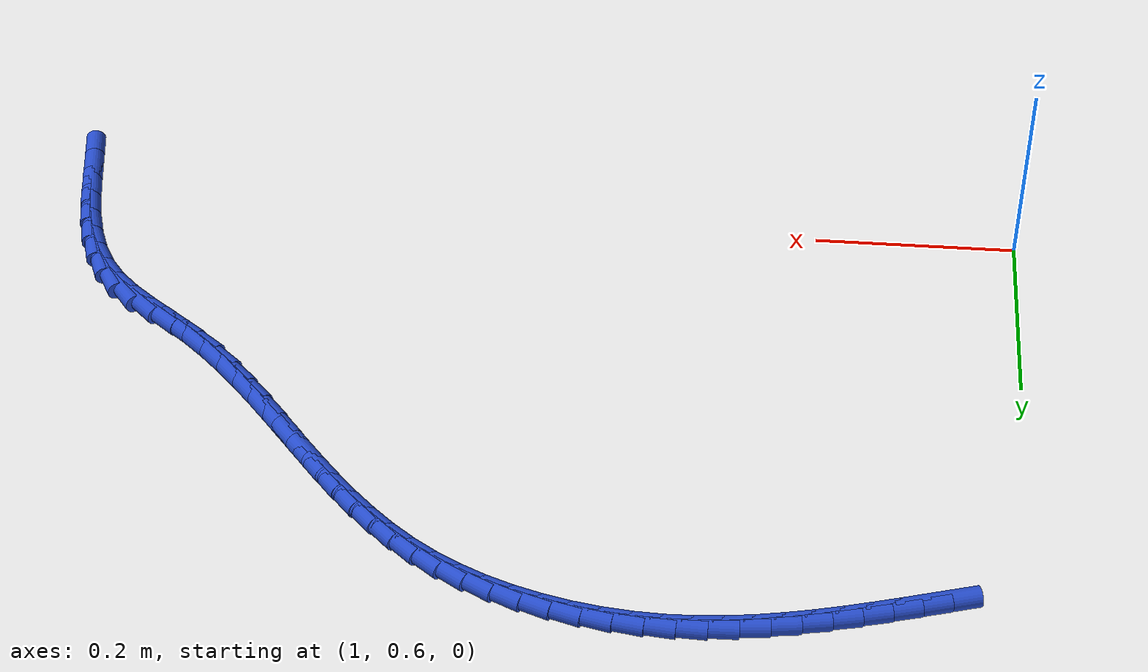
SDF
<sdf version="1.6">
 <world name="default">
  <model name="ground_plane">
   <static>1</static>
   <link name="link">
    <collision name="collision">
     <geometry><plane><normal>0 0 1</normal><size>100 100</size></plane></geometry>
     <surface><friction><ode><mu>100</mu><mu2>50</mu2></ode></friction></surface>
    </collision>
    <visual name="visual">
     <cast_shadows>0</cast_shadows>
     <geometry><plane><normal>0 0 1</normal><size>100 100</size></plane></geometry>
     <material>
      <script><uri>file://media/materials/scripts/gazebo.material</uri><name>Gazebo/WhiteGlow</name></script>
     </material>
    </visual>
   </link>
  </model>
  <model name="line">
   <link name="link_60">
    <pose>1.0867222086044612 1.086990925106635 0.01 0 1.57 0.28063739986274855</pose>
    <collision name="collision">
     <geometry><cylinder><radius>0.01</radius><length>0.08</length></cylinder></geometry>
    </collision>
    <visual name="visual">
     <material>
      <script><name>Gazebo/Blue</name><uri>file://media/materials/scripts/gazebo.material</uri></script>
     </material>
     <geometry><cylinder><radius>0.01</radius><length>0.08</length></cylinder></geometry>
    </visual>
   </link>
   <link name="link_61">
    <pose>1.1133660706073067 1.0946708733118404 0.01 0 1.57 0.2724246127013261</pose>
    <collision name="collision">
     <geometry><cylinder><radius>0.01</radius><length>0.08</length></cylinder></geometry>
    </collision>
    <visual name="visual">
     <material>
      <script><name>Gazebo/Blue</name><uri>file://media/materials/scripts/gazebo.material</uri></script>
     </material>
     <geometry><cylinder><radius>0.01</radius><length>0.08</length></cylinder></geometry>
    </visual>
   </link>
   <link name="link_62">
    <pose>1.1400894353934774 1.1021365856074015 0.01 0 1.57 0.2572107848409974</pose>
    <collision name="collision">
     <geometry><cylinder><radius>0.01</radius><length>0.08</length></cylinder></geometry>
    </collision>
    <visual name="visual">
     <material>
      <script><name>Gazebo/Blue</name><uri>file://media/materials/scripts/gazebo.material</uri></script>
     </material>
     <geometry><cylinder><radius>0.01</radius><length>0.08</length></cylinder></geometry>
    </visual>
   </link>
   <link name="link_63">
    <pose>1.1669095114374335 1.1091912619070383 0.01 0 1.57 0.2349369043771384</pose>
    <collision name="collision">
     <geometry><cylinder><radius>0.01</radius><length>0.08</length></cylinder></geometry>
    </collision>
    <visual name="visual">
     <material>
      <script><name>Gazebo/Blue</name><uri>file://media/materials/scripts/gazebo.material</uri></script>
     </material>
     <geometry><cylinder><radius>0.01</radius><length>0.08</length></cylinder></geometry>
    </visual>
   </link>
   <link name="link_64">
    <pose>1.193843507213636 1.1156381021244721 0.01 0 1.57 0.2055241596358322</pose>
    <collision name="collision">
     <geometry><cylinder><radius>0.01</radius><length>0.08</length></cylinder></geometry>
    </collision>
    <visual name="visual">
     <material>
      <script><name>Gazebo/Blue</name><uri>file://media/materials/scripts/gazebo.material</uri></script>
     </material>
     <geometry><cylinder><radius>0.01</radius><length>0.08</length></cylinder></geometry>
    </visual>
   </link>
   <link name="link_65">
    <pose>1.220908631196543 1.1212803061734218 0.01 0 1.57 0.16890723727493465</pose>
    <collision name="collision">
     <geometry><cylinder><radius>0.01</radius><length>0.08</length></cylinder></geometry>
    </collision>
    <visual name="visual">
     <material>
      <script><name>Gazebo/Blue</name><uri>file://media/materials/scripts/gazebo.material</uri></script>
     </material>
     <geometry><cylinder><radius>0.01</radius><length>0.08</length></cylinder></geometry>
    </visual>
   </link>
   <link name="link_66">
    <pose>1.2481220918606164 1.1259210739676084 0.01 0 1.57 0.12507977747997986</pose>
    <collision name="collision">
     <geometry><cylinder><radius>0.01</radius><length>0.08</length></cylinder></geometry>
    </collision>
    <visual name="visual">
     <material>
      <script><name>Gazebo/Blue</name><uri>file://media/materials/scripts/gazebo.material</uri></script>
     </material>
     <geometry><cylinder><radius>0.01</radius><length>0.08</length></cylinder></geometry>
    </visual>
   </link>
   <link name="link_67">
    <pose>1.2755010976803156 1.1293636054207523 0.01 0 1.57 0.07415132518568276</pose>
    <collision name="collision">
     <geometry><cylinder><radius>0.01</radius><length>0.08</length></cylinder></geometry>
    </collision>
    <visual name="visual">
     <material>
      <script><name>Gazebo/Blue</name><uri>file://media/materials/scripts/gazebo.material</uri></script>
     </material>
     <geometry><cylinder><radius>0.01</radius><length>0.08</length></cylinder></geometry>
    </visual>
   </link>
   <link name="link_68">
    <pose>1.303062857130101 1.1314111004465732 0.01 0 1.57 0.0164117200325248</pose>
    <collision name="collision">
     <geometry><cylinder><radius>0.01</radius><length>0.08</length></cylinder></geometry>
    </collision>
    <visual name="visual">
     <material>
      <script><name>Gazebo/Blue</name><uri>file://media/materials/scripts/gazebo.material</uri></script>
     </material>
     <geometry><cylinder><radius>0.01</radius><length>0.08</length></cylinder></geometry>
    </visual>
   </link>
   <link name="link_69">
    <pose>1.3308245786844324 1.1318667589587914 0.01 0 1.57 -0.04645657368198206</pose>
    <collision name="collision">
     <geometry><cylinder><radius>0.01</radius><length>0.08</length></cylinder></geometry>
    </collision>
    <visual name="visual">
     <material>
      <script><name>Gazebo/Blue</name><uri>file://media/materials/scripts/gazebo.material</uri></script>
     </material>
     <geometry><cylinder><radius>0.01</radius><length>0.08</length></cylinder></geometry>
    </visual>
   </link>
   <link name="link_70">
    <pose>1.3587692045144981 1.1305676126438093 0.01 0 1.57 -0.10956556486181751</pose>
    <collision name="collision">
     <geometry><cylinder><radius>0.01</radius><length>0.08</length></cylinder></geometry>
    </collision>
    <visual name="visual">
     <material>
      <script><name>Gazebo/Blue</name><uri>file://media/materials/scripts/gazebo.material</uri></script>
     </material>
     <geometry><cylinder><radius>0.01</radius><length>0.08</length></cylinder></geometry>
    </visual>
   </link>
   <link name="link_71">
    <pose>1.3867376570880983 1.1274909119412262 0.01 0 1.57 -0.1724186300896279</pose>
    <collision name="collision">
     <geometry><cylinder><radius>0.01</radius><length>0.08</length></cylinder></geometry>
    </collision>
    <visual name="visual">
     <material>
      <script><name>Gazebo/Blue</name><uri>file://media/materials/scripts/gazebo.material</uri></script>
     </material>
     <geometry><cylinder><radius>0.01</radius><length>0.08</length></cylinder></geometry>
    </visual>
   </link>
   <link name="link_72">
    <pose>1.4145340708786305 1.1226502287769171 0.01 0 1.57 -0.2358294093577178</pose>
    <collision name="collision">
     <geometry><cylinder><radius>0.01</radius><length>0.08</length></cylinder></geometry>
    </collision>
    <visual name="visual">
     <material>
      <script><name>Gazebo/Blue</name><uri>file://media/materials/scripts/gazebo.material</uri></script>
     </material>
     <geometry><cylinder><radius>0.01</radius><length>0.08</length></cylinder></geometry>
    </visual>
   </link>
   <link name="link_73">
    <pose>1.44196258030062 1.116059135134884 0.01 0 1.57 -0.30060101414818047</pose>
    <collision name="collision">
     <geometry><cylinder><radius>0.01</radius><length>0.08</length></cylinder></geometry>
    </collision>
    <visual name="visual">
     <material>
      <script><name>Gazebo/Blue</name><uri>file://media/materials/scripts/gazebo.material</uri></script>
     </material>
     <geometry><cylinder><radius>0.01</radius><length>0.08</length></cylinder></geometry>
    </visual>
   </link>
   <link name="link_74">
    <pose>1.4688273197685913 1.107731202999129 0.01 0 1.57 -0.36753331716097837</pose>
    <collision name="collision">
     <geometry><cylinder><radius>0.01</radius><length>0.08</length></cylinder></geometry>
    </collision>
    <visual name="visual">
     <material>
      <script><name>Gazebo/Blue</name><uri>file://media/materials/scripts/gazebo.material</uri></script>
     </material>
     <geometry><cylinder><radius>0.01</radius><length>0.08</length></cylinder></geometry>
    </visual>
   </link>
   <link name="link_75">
    <pose>1.494932423697069 1.097680004353655 0.01 0 1.57 -0.4374239429616152</pose>
    <collision name="collision">
     <geometry><cylinder><radius>0.01</radius><length>0.08</length></cylinder></geometry>
    </collision>
    <visual name="visual">
     <material>
      <script><name>Gazebo/Blue</name><uri>file://media/materials/scripts/gazebo.material</uri></script>
     </material>
     <geometry><cylinder><radius>0.01</radius><length>0.08</length></cylinder></geometry>
    </visual>
   </link>
   <link name="link_76">
    <pose>1.5200820265005779 1.0859191111824638 0.01 0 1.57 -0.5110592423421279</pose>
    <collision name="collision">
     <geometry><cylinder><radius>0.01</radius><length>0.08</length></cylinder></geometry>
    </collision>
    <visual name="visual">
     <material>
      <script><name>Gazebo/Blue</name><uri>file://media/materials/scripts/gazebo.material</uri></script>
     </material>
     <geometry><cylinder><radius>0.01</radius><length>0.08</length></cylinder></geometry>
    </visual>
   </link>
   <link name="link_77">
    <pose>1.5440802625936425 1.072462095469558 0.01 0 1.57 -0.5889745599587863</pose>
    <collision name="collision">
     <geometry><cylinder><radius>0.01</radius><length>0.08</length></cylinder></geometry>
    </collision>
    <visual name="visual">
     <material>
      <script><name>Gazebo/Blue</name><uri>file://media/materials/scripts/gazebo.material</uri></script>
     </material>
     <geometry><cylinder><radius>0.01</radius><length>0.08</length></cylinder></geometry>
    </visual>
   </link>
   <link name="link_78">
    <pose>1.5667373056100533 1.0573255704286706 0.01 0 1.57 -0.6650921187527021</pose>
    <collision name="collision">
     <geometry><cylinder><radius>0.01</radius><length>0.08</length></cylinder></geometry>
    </collision>
    <visual name="visual">
     <material>
      <script><name>Gazebo/Blue</name><uri>file://media/materials/scripts/gazebo.material</uri></script>
     </material>
     <geometry><cylinder><radius>0.01</radius><length>0.08</length></cylinder></geometry>
    </visual>
   </link>
   <link name="link_79">
    <pose>1.588042190640698 1.040616220317003 0.01 0 1.57 -0.7311967412535899</pose>
    <collision name="collision">
     <geometry><cylinder><radius>0.01</radius><length>0.08</length></cylinder></geometry>
    </collision>
    <visual name="visual">
     <material>
      <script><name>Gazebo/Blue</name><uri>file://media/materials/scripts/gazebo.material</uri></script>
     </material>
     <geometry><cylinder><radius>0.01</radius><length>0.08</length></cylinder></geometry>
    </visual>
   </link>
   <link name="link_80">
    <pose>1.608188310138151 1.0225436396615613 0.01 0 1.57 -0.7861447970342501</pose>
    <collision name="collision">
     <geometry><cylinder><radius>0.01</radius><length>0.08</length></cylinder></geometry>
    </collision>
    <visual name="visual">
     <material>
      <script><name>Gazebo/Blue</name><uri>file://media/materials/scripts/gazebo.material</uri></script>
     </material>
     <geometry><cylinder><radius>0.01</radius><length>0.08</length></cylinder></geometry>
    </visual>
   </link>
   <link name="link_81">
    <pose>1.6273802233576677 1.003323046367278 0.01 0 1.57 -0.8297037227932336</pose>
    <collision name="collision">
     <geometry><cylinder><radius>0.01</radius><length>0.08</length></cylinder></geometry>
    </collision>
    <visual name="visual">
     <material>
      <script><name>Gazebo/Blue</name><uri>file://media/materials/scripts/gazebo.material</uri></script>
     </material>
     <geometry><cylinder><radius>0.01</radius><length>0.08</length></cylinder></geometry>
    </visual>
   </link>
   <link name="link_82">
    <pose>1.645822489554503 0.9831696583390842 0.01 0 1.57 -0.8619552057652536</pose>
    <collision name="collision">
     <geometry><cylinder><radius>0.01</radius><length>0.08</length></cylinder></geometry>
    </collision>
    <visual name="visual">
     <material>
      <script><name>Gazebo/Blue</name><uri>file://media/materials/scripts/gazebo.material</uri></script>
     </material>
     <geometry><cylinder><radius>0.01</radius><length>0.08</length></cylinder></geometry>
    </visual>
   </link>
   <link name="link_83">
    <pose>1.6637196679839104 0.9622986934819124 0.01 0 1.57 -0.8831253194804538</pose>
    <collision name="collision">
     <geometry><cylinder><radius>0.01</radius><length>0.08</length></cylinder></geometry>
    </collision>
    <visual name="visual">
     <material>
      <script><name>Gazebo/Blue</name><uri>file://media/materials/scripts/gazebo.material</uri></script>
     </material>
     <geometry><cylinder><radius>0.01</radius><length>0.08</length></cylinder></geometry>
    </visual>
   </link>
   <link name="link_84">
    <pose>1.681276317901146 0.9409253697006945 0.01 0 1.57 -0.8934622281549885</pose>
    <collision name="collision">
     <geometry><cylinder><radius>0.01</radius><length>0.08</length></cylinder></geometry>
    </collision>
    <visual name="visual">
     <material>
      <script><name>Gazebo/Blue</name><uri>file://media/materials/scripts/gazebo.material</uri></script>
     </material>
     <geometry><cylinder><radius>0.01</radius><length>0.08</length></cylinder></geometry>
    </visual>
   </link>
   <link name="link_85">
    <pose>1.6986969985614642 0.9192649049003626 0.01 0 1.57 -0.8931620746274284</pose>
    <collision name="collision">
     <geometry><cylinder><radius>0.01</radius><length>0.08</length></cylinder></geometry>
    </collision>
    <visual name="visual">
     <material>
      <script><name>Gazebo/Blue</name><uri>file://media/materials/scripts/gazebo.material</uri></script>
     </material>
     <geometry><cylinder><radius>0.01</radius><length>0.08</length></cylinder></geometry>
    </visual>
   </link>
   <link name="link_86">
    <pose>1.7161862692201189 0.8975325169858482 0.01 0 1.57 -0.882336727546556</pose>
    <collision name="collision">
     <geometry><cylinder><radius>0.01</radius><length>0.08</length></cylinder></geometry>
    </collision>
    <visual name="visual">
     <material>
      <script><name>Gazebo/Blue</name><uri>file://media/materials/scripts/gazebo.material</uri></script>
     </material>
     <geometry><cylinder><radius>0.01</radius><length>0.08</length></cylinder></geometry>
    </visual>
   </link>
   <link name="link_87">
    <pose>1.733948689132366 0.8759434238620837 0.01 0 1.57 -0.8610175234651999</pose>
    <collision name="collision">
     <geometry><cylinder><radius>0.01</radius><length>0.08</length></cylinder></geometry>
    </collision>
    <visual name="visual">
     <material>
      <script><name>Gazebo/Blue</name><uri>file://media/materials/scripts/gazebo.material</uri></script>
     </material>
     <geometry><cylinder><radius>0.01</radius><length>0.08</length></cylinder></geometry>
    </visual>
   </link>
   <link name="link_88">
    <pose>1.7521888175534595 0.8547128434340011 0.01 0 1.57 -0.8291924449028764</pose>
    <collision name="collision">
     <geometry><cylinder><radius>0.01</radius><length>0.08</length></cylinder></geometry>
    </collision>
    <visual name="visual">
     <material>
      <script><name>Gazebo/Blue</name><uri>file://media/materials/scripts/gazebo.material</uri></script>
     </material>
     <geometry><cylinder><radius>0.01</radius><length>0.08</length></cylinder></geometry>
    </visual>
   </link>
   <link name="link_89">
    <pose>1.771111213738655 0.8340559936065318 0.01 0 1.57 -0.7868770526893114</pose>
    <collision name="collision">
     <geometry><cylinder><radius>0.01</radius><length>0.08</length></cylinder></geometry>
    </collision>
    <visual name="visual">
     <material>
      <script><name>Gazebo/Blue</name><uri>file://media/materials/scripts/gazebo.material</uri></script>
     </material>
     <geometry><cylinder><radius>0.01</radius><length>0.08</length></cylinder></geometry>
    </visual>
   </link>
   <link name="link_90">
    <pose>1.7909204369432064 0.8141880922846079 0.01 0 1.57 -0.7342192515860428</pose>
    <collision name="collision">
     <geometry><cylinder><radius>0.01</radius><length>0.08</length></cylinder></geometry>
    </collision>
    <visual name="visual">
     <material>
      <script><name>Gazebo/Blue</name><uri>file://media/materials/scripts/gazebo.material</uri></script>
     </material>
     <geometry><cylinder><radius>0.01</radius><length>0.08</length></cylinder></geometry>
    </visual>
   </link>
   <link name="link_91">
    <pose>1.8118210464223687 0.7953243573731617 0.01 0 1.57 -0.6752927218329403</pose>
    <collision name="collision">
     <geometry><cylinder><radius>0.01</radius><length>0.08</length></cylinder></geometry>
    </collision>
    <visual name="visual">
     <material>
      <script><name>Gazebo/Blue</name><uri>file://media/materials/scripts/gazebo.material</uri></script>
     </material>
     <geometry><cylinder><radius>0.01</radius><length>0.08</length></cylinder></geometry>
    </visual>
   </link>
   <link name="link_92">
    <pose>1.8339296283302076 0.77761747654354 0.01 0 1.57 -0.6495794162950996</pose>
    <collision name="collision">
     <geometry><cylinder><radius>0.01</radius><length>0.08</length></cylinder></geometry>
    </collision>
    <visual name="visual">
     <material>
      <script><name>Gazebo/Blue</name><uri>file://media/materials/scripts/gazebo.material</uri></script>
     </material>
     <geometry><cylinder><radius>0.01</radius><length>0.08</length></cylinder></geometry>
    </visual>
   </link>
   <link name="link_93">
    <pose>1.8564098589200875 0.7605428204477894 0.01 0 1.57 -0.6814106579400032</pose>
    <collision name="collision">
     <geometry><cylinder><radius>0.01</radius><length>0.08</length></cylinder></geometry>
    </collision>
    <visual name="visual">
     <material>
      <script><name>Gazebo/Blue</name><uri>file://media/materials/scripts/gazebo.material</uri></script>
     </material>
     <geometry><cylinder><radius>0.01</radius><length>0.08</length></cylinder></geometry>
    </visual>
   </link>
   <link name="link_94">
    <pose>1.8778422226858573 0.7431612339743516 0.01 0 1.57 -0.7768070853827901</pose>
    <collision name="collision">
     <geometry><cylinder><radius>0.01</radius><length>0.08</length></cylinder></geometry>
    </collision>
    <visual name="visual">
     <material>
      <script><name>Gazebo/Blue</name><uri>file://media/materials/scripts/gazebo.material</uri></script>
     </material>
     <geometry><cylinder><radius>0.01</radius><length>0.08</length></cylinder></geometry>
    </visual>
   </link>
   <link name="link_95">
    <pose>1.8967988097641835 0.7245275954024603 0.01 0 1.57 -0.9318301462613579</pose>
    <collision name="collision">
     <geometry><cylinder><radius>0.01</radius><length>0.08</length></cylinder></geometry>
    </collision>
    <visual name="visual">
     <material>
      <script><name>Gazebo/Blue</name><uri>file://media/materials/scripts/gazebo.material</uri></script>
     </material>
     <geometry><cylinder><radius>0.01</radius><length>0.08</length></cylinder></geometry>
    </visual>
   </link>
   <link name="link_96">
    <pose>1.9121434048097552 0.7038736618951875 0.01 0 1.57 -1.085660193214864</pose>
    <collision name="collision">
     <geometry><cylinder><radius>0.01</radius><length>0.08</length></cylinder></geometry>
    </collision>
    <visual name="visual">
     <material>
      <script><name>Gazebo/Blue</name><uri>file://media/materials/scripts/gazebo.material</uri></script>
     </material>
     <geometry><cylinder><radius>0.01</radius><length>0.08</length></cylinder></geometry>
    </visual>
   </link>
   <link name="link_97">
    <pose>1.9240745809859106 0.6812405849887565 0.01 0 1.57 -1.213087757171136</pose>
    <collision name="collision">
     <geometry><cylinder><radius>0.01</radius><length>0.08</length></cylinder></geometry>
    </collision>
    <visual name="visual">
     <material>
      <script><name>Gazebo/Blue</name><uri>file://media/materials/scripts/gazebo.material</uri></script>
     </material>
     <geometry><cylinder><radius>0.01</radius><length>0.08</length></cylinder></geometry>
    </visual>
   </link>
   <link name="link_98">
    <pose>1.9331724886250485 0.6569008985032202 0.01 0 1.57 -1.3112149450418653</pose>
    <collision name="collision">
     <geometry><cylinder><radius>0.01</radius><length>0.08</length></cylinder></geometry>
    </collision>
    <visual name="visual">
     <material>
      <script><name>Gazebo/Blue</name><uri>file://media/materials/scripts/gazebo.material</uri></script>
     </material>
     <geometry><cylinder><radius>0.01</radius><length>0.08</length></cylinder></geometry>
    </visual>
   </link>
   <link name="link_99">
    <pose>1.940017308132894 0.6311271544946154 0.01 0 1.57 -1.3810924616890177</pose>
    <collision name="collision">
     <geometry><cylinder><radius>0.01</radius><length>0.08</length></cylinder></geometry>
    </collision>
    <visual name="visual">
     <material>
      <script><name>Gazebo/Blue</name><uri>file://media/materials/scripts/gazebo.material</uri></script>
     </material>
     <geometry><cylinder><radius>0.01</radius><length>0.08</length></cylinder></geometry>
    </visual>
   </link>
   <link name="link_100">
    <pose>1.945189219915171 0.6041919050189783 0.01 0 1.57 -1.425227709742464</pose>
    <collision name="collision">
     <geometry><cylinder><radius>0.01</radius><length>0.08</length></cylinder></geometry>
    </collision>
    <visual name="visual">
     <material>
      <script><name>Gazebo/Blue</name><uri>file://media/materials/scripts/gazebo.material</uri></script>
     </material>
     <geometry><cylinder><radius>0.01</radius><length>0.08</length></cylinder></geometry>
    </visual>
   </link>
   <link name="link_101">
    <pose>1.9492684043776065 0.5763677021323462 0.01 0 1.57 -1.4460410745518524</pose>
    <collision name="collision">
     <geometry><cylinder><radius>0.01</radius><length>0.08</length></cylinder></geometry>
    </collision>
    <visual name="visual">
     <material>
      <script><name>Gazebo/Blue</name><uri>file://media/materials/scripts/gazebo.material</uri></script>
     </material>
     <geometry><cylinder><radius>0.01</radius><length>0.08</length></cylinder></geometry>
    </visual>
   </link>
   <link name="link_102">
    <pose>1.9528350419259235 0.5479270978907554 0.01 0 1.57 -1.4452027586284655</pose>
    <collision name="collision">
     <geometry><cylinder><radius>0.01</radius><length>0.08</length></cylinder></geometry>
    </collision>
    <visual name="visual">
     <material>
      <script><name>Gazebo/Blue</name><uri>file://media/materials/scripts/gazebo.material</uri></script>
     </material>
     <geometry><cylinder><radius>0.01</radius><length>0.08</length></cylinder></geometry>
    </visual>
   </link>
  </model>
 </world>
</sdf>
